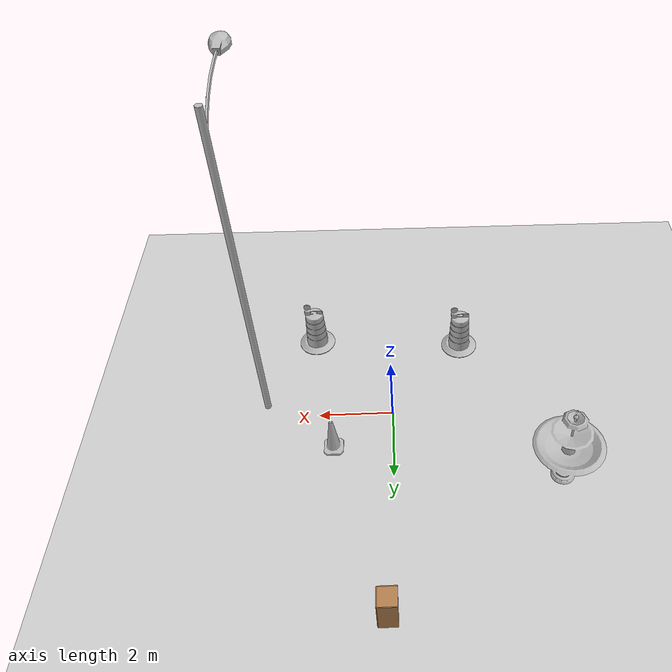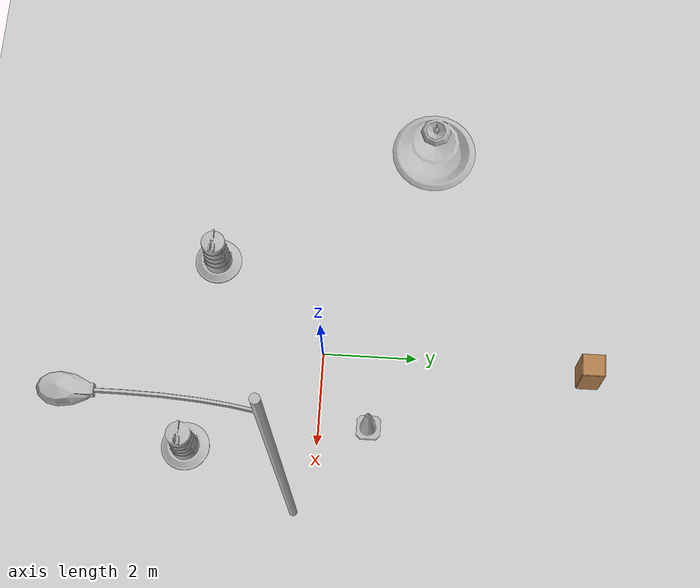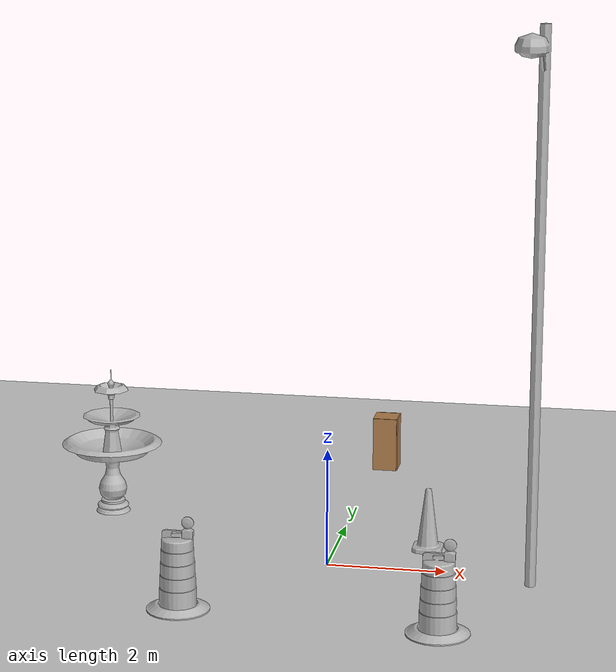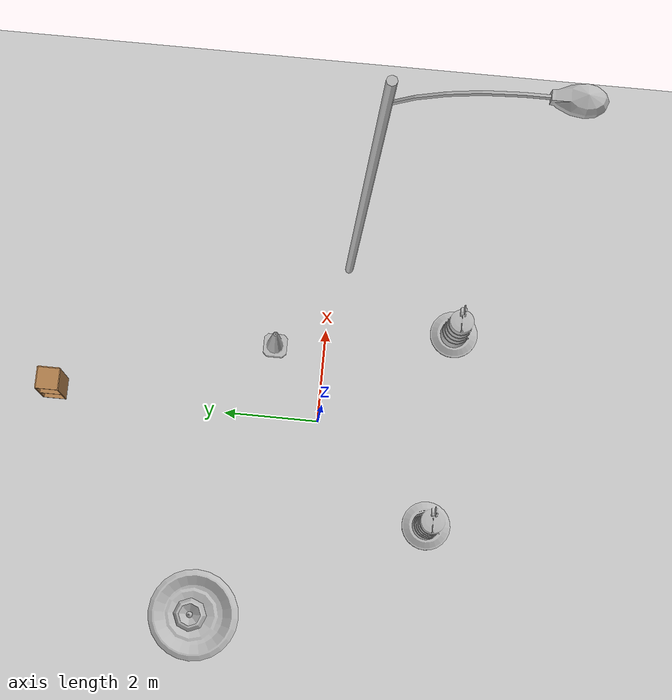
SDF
<sdf version="1.7">
 <world name="default">
  <light name="sun" type="directional">
   <pose>0 0 10 0 -0 0</pose>
   <diffuse>0.8 0.8 0.8 1</diffuse>
   <specular>0.2 0.2 0.2 1</specular>
   <attenuation>
    <range>1000</range>
    <constant>0.9</constant>
    <linear>0.01</linear>
    <quadratic>0.001</quadratic>
   </attenuation>
   <direction>-0.5 0.1 -0.9</direction>
   <spot><inner_angle>0</inner_angle><outer_angle>0</outer_angle><falloff>0</falloff></spot>
  </light>
  <model name="ground_plane">
   <static>1</static>
   <link name="link">
    <collision name="collision">
     <geometry><plane><normal>0 0 1</normal><size>100 100</size></plane></geometry>
     <surface><friction><ode><mu>100</mu><mu2>50</mu2></ode></friction></surface>
    </collision>
    <visual name="visual">
     <cast_shadows>0</cast_shadows>
     <geometry><plane><normal>0 0 1</normal><size>100 100</size></plane></geometry>
     <material>
      <script><uri>file://media/materials/scripts/gazebo.material</uri><name>Gazebo/Grey</name></script>
     </material>
    </visual>
   </link>
  </model>
  <gravity>0 0 -9.8</gravity>
  <magnetic_field>6e-06 2.3e-05 -4.2e-05</magnetic_field>
  <atmosphere type="adiabatic"/>
  <physics type="ode">
   <max_step_size>0.001</max_step_size>
   <real_time_factor>1</real_time_factor>
   <real_time_update_rate>1000</real_time_update_rate>
  </physics>
  <scene><ambient>0.4 0.4 0.4 1</ambient><background>0.7 0.7 0.7 1</background><shadows>1</shadows></scene>
  <audio><device>default</device></audio>
  <spherical_coordinates>
   <surface_model>EARTH_WGS84</surface_model>
   <latitude_deg>0</latitude_deg>
   <longitude_deg>0</longitude_deg>
   <elevation>0</elevation>
   <heading_deg>0</heading_deg>
  </spherical_coordinates>
  <model name="Construction Cone">
   <link name="link">
    <collision name="collision">
     <geometry>
      <mesh><scale>10 10 10</scale><uri>model://construction_cone/meshes/construction_cone.dae</uri></mesh>
     </geometry>
    </collision>
    <visual name="visual">
     <geometry>
      <mesh><scale>10 10 10</scale><uri>model://construction_cone/meshes/construction_cone.dae</uri></mesh>
     </geometry>
    </visual>
    <inertial>
     <inertia><ixx>1</ixx><ixy>0</ixy><ixz>0</ixz><iyy>1</iyy><iyz>0</iyz><izz>1</izz></inertia>
     <mass>1</mass>
    </inertial>
   </link>
   <pose>1.56629 1.06112 -0 0 -0 0</pose>
  </model>
  <model name="Construction Barrel">
   <link name="link">
    <inertial>
     <pose>0 0 0.4 0 -0 0</pose>
     <mass>500</mass>
     <inertia><ixx>51.2096</ixx><iyy>51.2096</iyy><izz>25</izz><ixy>0</ixy><ixz>0</ixz><iyz>0</iyz></inertia>
    </inertial>
    <collision name="collision">
     <geometry><mesh><uri>model://construction_barrel/meshes/construction_barrel.dae</uri></mesh></geometry>
    </collision>
    <visual name="visual">
     <geometry><mesh><uri>model://construction_barrel/meshes/construction_barrel.dae</uri></mesh></geometry>
    </visual>
   </link>
   <pose>2.18832 -2.7492 -2e-06 4e-06 7e-06 -1.9e-05</pose>
  </model>
  <model name="Construction Barrel_clone">
   <link name="link">
    <inertial>
     <pose>0 0 0.4 0 -0 0</pose>
     <mass>500</mass>
     <inertia><ixx>51.2096</ixx><iyy>51.2096</iyy><izz>25</izz><ixy>0</ixy><ixz>0</ixz><iyz>0</iyz></inertia>
    </inertial>
    <collision name="collision">
     <geometry><mesh><uri>model://construction_barrel/meshes/construction_barrel.dae</uri></mesh></geometry>
    </collision>
    <visual name="visual">
     <geometry><mesh><uri>model://construction_barrel/meshes/construction_barrel.dae</uri></mesh></geometry>
    </visual>
   </link>
   <pose>-1.98292 -2.46191 1e-06 3e-06 2e-06 -1.9e-05</pose>
  </model>
  <model name="fountain">
   <static>1</static>
   <link name="link">
    <collision name="collision">
     <geometry><mesh><uri>model://fountain/meshes/fountain.dae</uri></mesh></geometry>
    </collision>
    <visual name="visual">
     <geometry><mesh><uri>model://fountain/meshes/fountain.dae</uri></mesh></geometry>
    </visual>
   </link>
   <pose>-4.29292 2.12386 0 0 -0 0</pose>
  </model>
  <model name="Lamp Post">
   <static>1</static>
   <link name="link">
    <collision name="collision">
     <geometry><mesh><uri>model://lamp_post/meshes/lamp_post.dae</uri><scale>3 3 3</scale></mesh></geometry>
    </collision>
    <visual name="visual">
     <geometry><mesh><uri>model://lamp_post/meshes/lamp_post.dae</uri><scale>3 3 3</scale></mesh></geometry>
    </visual>
   </link>
   <pose>3.42623 -0.396023 0 0 -0 0</pose>
  </model>
  <model name="cabinet">
   <static>1</static>
   <link name="cabinet_bottom_plate">
    <inertial>
     <pose>0 0 -1 0 -0 0</pose>
     <inertia><ixx>2.05</ixx><ixy>0</ixy><ixz>0</ixz><iyy>2.05</iyy><iyz>0</iyz><izz>2.05</izz></inertia>
     <mass>25</mass>
    </inertial>
    <collision name="cabinet_bottom_plate_geom">
     <pose>0 0 0.01 0 -0 0</pose>
     <geometry><box><size>0.45 0.45 0.02</size></box></geometry>
    </collision>
    <visual name="cabinet_bottom_plate_geom_visual">
     <pose>0 0 0.01 0 -0 0</pose>
     <geometry><box><size>0.45 0.45 0.02</size></box></geometry>
     <material>
      <script><uri>file://media/materials/scripts/gazebo.material</uri><name>Gazebo/Wood</name></script>
     </material>
    </visual>
    <collision name="cabinet_bottom_plate_geom_cabinet_back_plate">
     <pose>0.235 0 0.51 0 -0 0</pose>
     <geometry><box><size>0.02 0.45 1.02</size></box></geometry>
    </collision>
    <visual name="cabinet_bottom_plate_geom_cabinet_back_plate_visual">
     <pose>0.235 0 0.51 0 -0 0</pose>
     <geometry><box><size>0.02 0.45 1.02</size></box></geometry>
     <material>
      <script><uri>file://media/materials/scripts/gazebo.material</uri><name>Gazebo/Wood</name></script>
     </material>
    </visual>
    <collision name="cabinet_bottom_plate_geom_cabinet_left_plate">
     <pose>0 0.235 0.51 0 -0 0</pose>
     <geometry><box><size>0.45 0.02 1.02</size></box></geometry>
    </collision>
    <visual name="cabinet_bottom_plate_geom_cabinet_left_plate_visual">
     <pose>0 0.235 0.51 0 -0 0</pose>
     <geometry><box><size>0.45 0.02 1.02</size></box></geometry>
     <material>
      <script><uri>file://media/materials/scripts/gazebo.material</uri><name>Gazebo/Wood</name></script>
     </material>
    </visual>
    <collision name="cabinet_bottom_plate_geom_cabinet_middle_plate">
     <pose>0 0 0.51 0 -0 0</pose>
     <geometry><box><size>0.45 0.45 0.02</size></box></geometry>
    </collision>
    <visual name="cabinet_bottom_plate_geom_cabinet_middle_plate_visual">
     <pose>0 0 0.51 0 -0 0</pose>
     <geometry><box><size>0.45 0.45 0.02</size></box></geometry>
     <material>
      <script><uri>file://media/materials/scripts/gazebo.material</uri><name>Gazebo/Wood</name></script>
     </material>
    </visual>
    <collision name="cabinet_bottom_plate_geom_cabinet_right_plate">
     <pose>0 -0.235 0.51 0 -0 0</pose>
     <geometry><box><size>0.45 0.02 1.02</size></box></geometry>
    </collision>
    <visual name="cabinet_bottom_plate_geom_cabinet_right_plate_visual">
     <pose>0 -0.235 0.51 0 -0 0</pose>
     <geometry><box><size>0.45 0.02 1.02</size></box></geometry>
     <material>
      <script><uri>file://media/materials/scripts/gazebo.material</uri><name>Gazebo/Wood</name></script>
     </material>
    </visual>
    <collision name="cabinet_bottom_plate_geom_cabinet_top_plate">
     <pose>0 0 1.01 0 -0 0</pose>
     <geometry><box><size>0.45 0.45 0.02</size></box></geometry>
    </collision>
    <visual name="cabinet_bottom_plate_geom_cabinet_top_plate_visual">
     <pose>0 0 1.01 0 -0 0</pose>
     <geometry><box><size>0.45 0.45 0.02</size></box></geometry>
     <material>
      <script><uri>file://media/materials/scripts/gazebo.material</uri><name>Gazebo/Wood</name></script>
     </material>
    </visual>
   </link>
   <pose>0.191931 5.6464 0 0 -0 0</pose>
  </model>
 </world>
</sdf>
